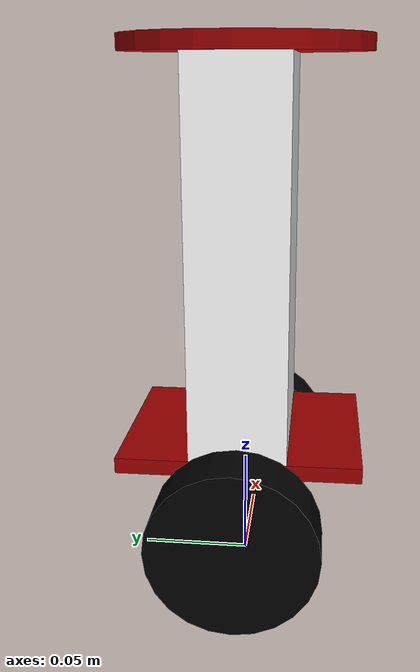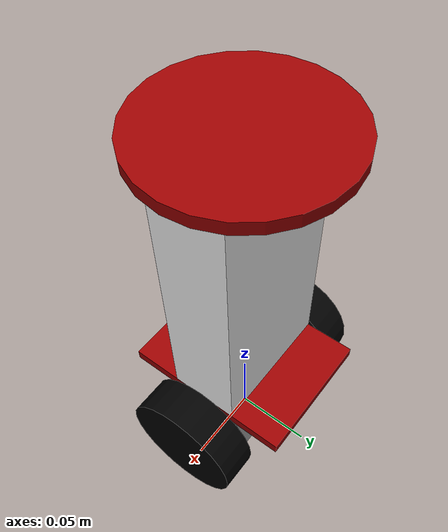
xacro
<?xml version="1.0"?> <!-- Specify this is an xml file using version 1.0-->

<!-- simplistic URDF file for a balance robot -->

<!-- INFO: in RVIZ2
    red is   x-axis
    green is y-axis
    blue is  z-axis
-->

<!-- Specify this is also an xacro extension (macro xml) -->
<robot xmlns:xacro="https://www.ros.org/wiki/xacro" name="balanceRobot">

    <!-- Material color properties -->
    <material name="gray">
        <color rgba="0.7 0.7 0.7 1.0"/>
    </material>

    <material name="red">
        <color rgba="0.6 0.0 0.0 1.0"/>
    </material>

    <material name="green">
        <color rgba="0.0 0.6 0.0 1.0"/>
    </material>

    <material name="blue">
        <color rgba="0.0 0.0 0.6 1.0"/>
    </material>

    <material name="white">
        <color rgba="1.0 1.0 1.0 1.0"/>
    </material>

    <material name="black">
        <color rgba="0.0 0.0 0.0 1.0"/>
    </material>

    <!-- Links of the robot they describe the (objects/parts) of the robot -->
    <!-- Link that is on the ground in the middle of the robot (useful for navigation purposes -->
    <link name="base_footprint"> <!-- Conventional name for this virtual reference link -->
        <!-- Empty virtual link-->
    </link>

    <!-- Base link stepper motors with housing -->
    <link name="base_link"> <!-- Needs to be called base_link (as a first real link)-->
        <visual>
            <origin xyz="0.0 0.0 0.0" rpy="0.0 0.0 0.0"/>
            <geometry>
                <box size="0.083 0.050 0.046"/>
            </geometry>
            <material name="gray"/>
        </visual>
    </link>

    <!-- Base Plate of the robot where everthing gets mounted -->
    <link name="basePlate_link">
        <visual>
            <origin xyz="0.0 0.0 0.0" rpy="0.0 0.0 0.0"/>
            <geometry>
                <box size="0.083 0.108 0.007"/>
            </geometry>
            <material name="red"/>
        </visual>
    </link>

    <!-- Main body link where battery pack and electronics are mounted -->
    <link name="body_link">
        <visual>
            <origin xyz="0.0 0.0 0.0" rpy="0.0 0.0 0.0"/>
            <geometry>
                <box size="0.083 0.043 0.170"/>
            </geometry>
            <material name="white"/>
        </visual>
    </link>

    <!-- Top Plate link the platform on top of the robot -->
    <link name="topPlate_link">
        <visual>
            <origin xyz="0.0 0.0 0.0" rpy="0.0 0.0 0.0"/>
            <geometry>
                <cylinder radius="0.054" length="0.007"/>
            </geometry>
            <material name="red"/>
        </visual>
    </link>

    <!-- Link that represents the right wheel-->
    <link name="right_wheel_link">
        <visual>
            <origin xyz="0.0 0.0 0.0" rpy="0.0 ${pi/2} 0.0"/>
            <geometry>
                <cylinder radius="0.0375" length="0.024"/>
            </geometry>
            <material name="black"/>
        </visual>
    </link>

    <!-- Link that represents the left wheel -->
    <link name="left_wheel_link">
        <visual>
            <origin xyz="0.0 0.0 0.0" rpy="0.0 ${pi/2} 0.0"/>
            <geometry>
                <cylinder radius="0.0375" length="0.024"/>
            </geometry>
            <material name="black"/>
        </visual>
    </link>

    <!-- Joints of the robot they attach the links together to make a TF tree -->
    <!-- Joint that connects the virtual base_footprint and base_link -->
    <joint name="base_footprint_joint" type="fixed">
        <origin xyz="0.0 0.0 0.0375" rpy="0.0 0.0 0.0"/>
        <parent link="base_footprint"/>
        <child link="base_link"/>
    </joint>

    <!-- Joint that connects base_link with baseplate -->
    <joint name="base_plate_joint" type="fixed">
        <origin xyz="0.0 0.0 0.0265" rpy="0.0 0.0 0.0"/>
        <parent link="base_link"/>
        <child link="basePlate_link"/>
    </joint>

    <!-- Joint that links the main body with respect to the base_link -->
    <joint name="base_body_link" type="fixed">
        <origin xyz="0.0 0.0 0.115" rpy="0.0 0.0 0.0"/>
        <parent link="base_link"/>
        <child link="body_link"/>
    </joint>

    <!-- Joint that links the top plate with respect to the base_link -->
    <joint name="base_topPlate_joint" type="fixed">
        <origin xyz="0.0 0.0 0.2035" rpy="0.0 0.0 0.0"/>
        <parent link="base_link"/>
        <child link="topPlate_link"/>
    </joint>

    <!-- Joint that links the right wheel to the base_link as a continous rotating wheel -->
    <joint name="right_wheel_joint" type="continuous">
        <origin xyz="0.0555 0.0 0.0" rpy="0.0 0.0 0.0"/>
        <parent link="base_link"/>
        <child link="right_wheel_link"/>
        <axis xyz="1.0 0.0 0.0"/>
    </joint>

    <!-- Joint that links the left wheel to the base_link as a continous rotating wheel -->
    <joint name="left_wheel_joint" type="continuous">
        <origin xyz="-0.0555 0.0 0.0" rpy="0.0 0.0 0.0"/>
        <parent link="base_link"/>
        <child link="left_wheel_link"/>
        <axis xyz="1.0 0.0 0.0"/> <!-- Let the wheel rotate around the x-axis -->
    </joint>

</robot>
